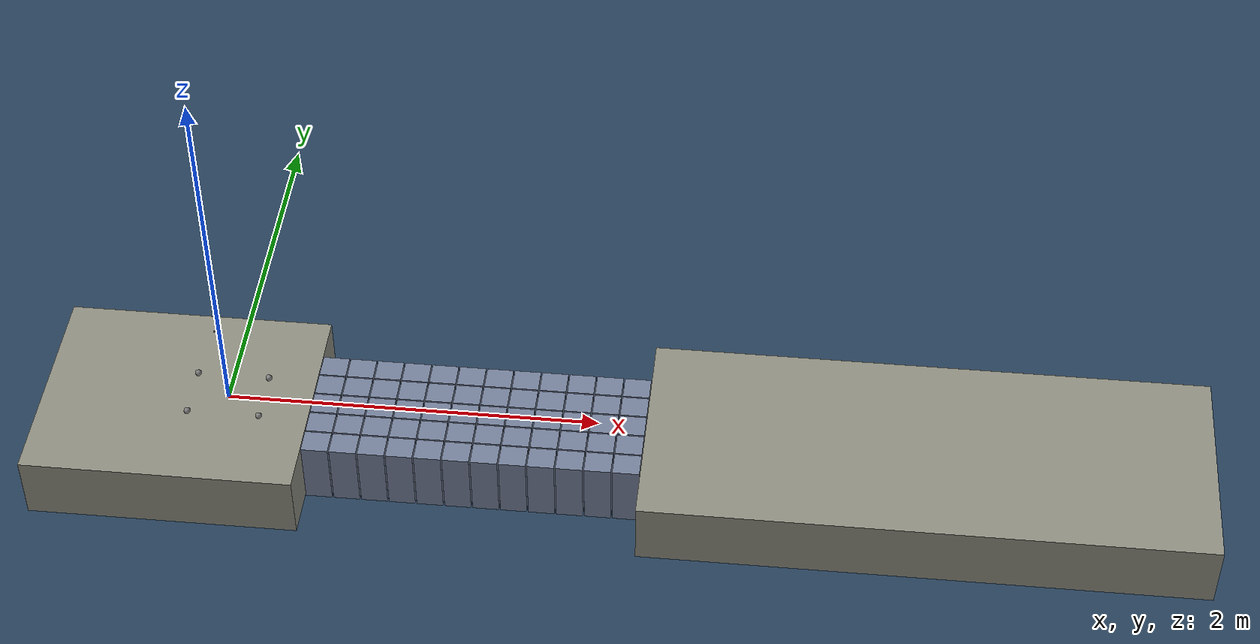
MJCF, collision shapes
<mujoco model="go2 stones">
  <include file="mjx_go2_force.xml"/>
  <statistic center="1 0 0.1" extent="1.5"/>
  <visual>
    <headlight diffuse="0.6 0.6 0.6" ambient="0.3 0.3 0.3" specular="0 0 0"/>
    <global azimuth="-130" elevation="-20"/>
  </visual>
  <asset>
    <texture type="2d" name="groundplane" builtin="checker" mark="edge" rgb1="0.2 0.3 0.4" rgb2="0.1 0.2 0.3"
      markrgb="0.8 0.8 0.8" width="300" height="300"/>
    <material name="groundplane" texture="groundplane" texuniform="true" texrepeat="5 5" reflectance="0.2"/>
  </asset>
  <worldbody>
    <light pos="1 0 1.5" dir="0 0 -1" directional="true"/>
    <geom name="floor" size="0 0 0.05" type="plane" pos="0 0 -0.35" material="groundplane"/>
    <geom name="pad_start" type="box" contype="1" conaffinity="0" rgba="0.55 0.55 0.5 1" size="0.7250 0.6 0.25" pos="-0.2750 0 -0.25"/>
    <geom name="pad_end" type="box" contype="1" conaffinity="0" rgba="0.55 0.55 0.5 1" size="1.5000 0.6 0.25" pos="3.7500 0 -0.25"/>
    <geom name="stone0" type="box" contype="1" conaffinity="0" rgba="0.45 0.5 0.6 1" size="0.0710 0.0660 0.25" pos="0.5250 -0.2800 -0.25"/>
    <geom name="stone1" type="box" contype="1" conaffinity="0" rgba="0.45 0.5 0.6 1" size="0.0710 0.0660 0.25" pos="0.5250 -0.1400 -0.25"/>
    <geom name="stone2" type="box" contype="1" conaffinity="0" rgba="0.45 0.5 0.6 1" size="0.0710 0.0660 0.25" pos="0.5250 0.0000 -0.25"/>
    <geom name="stone3" type="box" contype="1" conaffinity="0" rgba="0.45 0.5 0.6 1" size="0.0710 0.0660 0.25" pos="0.5250 0.1400 -0.25"/>
    <geom name="stone4" type="box" contype="1" conaffinity="0" rgba="0.45 0.5 0.6 1" size="0.0710 0.0660 0.25" pos="0.5250 0.2800 -0.25"/>
    <geom name="stone5" type="box" contype="1" conaffinity="0" rgba="0.45 0.5 0.6 1" size="0.0710 0.0660 0.25" pos="0.6750 -0.2800 -0.25"/>
    <geom name="stone6" type="box" contype="1" conaffinity="0" rgba="0.45 0.5 0.6 1" size="0.0710 0.0660 0.25" pos="0.6750 -0.1400 -0.25"/>
    <geom name="stone7" type="box" contype="1" conaffinity="0" rgba="0.45 0.5 0.6 1" size="0.0710 0.0660 0.25" pos="0.6750 0.0000 -0.25"/>
    <geom name="stone8" type="box" contype="1" conaffinity="0" rgba="0.45 0.5 0.6 1" size="0.0710 0.0660 0.25" pos="0.6750 0.1400 -0.25"/>
    <geom name="stone9" type="box" contype="1" conaffinity="0" rgba="0.45 0.5 0.6 1" size="0.0710 0.0660 0.25" pos="0.6750 0.2800 -0.25"/>
    <geom name="stone10" type="box" contype="1" conaffinity="0" rgba="0.45 0.5 0.6 1" size="0.0710 0.0660 0.25" pos="0.8250 -0.2800 -0.25"/>
    <geom name="stone11" type="box" contype="1" conaffinity="0" rgba="0.45 0.5 0.6 1" size="0.0710 0.0660 0.25" pos="0.8250 -0.1400 -0.25"/>
    <geom name="stone12" type="box" contype="1" conaffinity="0" rgba="0.45 0.5 0.6 1" size="0.0710 0.0660 0.25" pos="0.8250 0.0000 -0.25"/>
    <geom name="stone13" type="box" contype="1" conaffinity="0" rgba="0.45 0.5 0.6 1" size="0.0710 0.0660 0.25" pos="0.8250 0.1400 -0.25"/>
    <geom name="stone14" type="box" contype="1" conaffinity="0" rgba="0.45 0.5 0.6 1" size="0.0710 0.0660 0.25" pos="0.8250 0.2800 -0.25"/>
    <geom name="stone15" type="box" contype="1" conaffinity="0" rgba="0.45 0.5 0.6 1" size="0.0710 0.0660 0.25" pos="0.9750 -0.2800 -0.25"/>
    <geom name="stone16" type="box" contype="1" conaffinity="0" rgba="0.45 0.5 0.6 1" size="0.0710 0.0660 0.25" pos="0.9750 -0.1400 -0.25"/>
    <geom name="stone17" type="box" contype="1" conaffinity="0" rgba="0.45 0.5 0.6 1" size="0.0710 0.0660 0.25" pos="0.9750 0.0000 -0.25"/>
    <geom name="stone18" type="box" contype="1" conaffinity="0" rgba="0.45 0.5 0.6 1" size="0.0710 0.0660 0.25" pos="0.9750 0.1400 -0.25"/>
    <geom name="stone19" type="box" contype="1" conaffinity="0" rgba="0.45 0.5 0.6 1" size="0.0710 0.0660 0.25" pos="0.9750 0.2800 -0.25"/>
    <geom name="stone20" type="box" contype="1" conaffinity="0" rgba="0.45 0.5 0.6 1" size="0.0710 0.0660 0.25" pos="1.1250 -0.2800 -0.25"/>
    <geom name="stone21" type="box" contype="1" conaffinity="0" rgba="0.45 0.5 0.6 1" size="0.0710 0.0660 0.25" pos="1.1250 -0.1400 -0.25"/>
    <geom name="stone22" type="box" contype="1" conaffinity="0" rgba="0.45 0.5 0.6 1" size="0.0710 0.0660 0.25" pos="1.1250 0.0000 -0.25"/>
    <geom name="stone23" type="box" contype="1" conaffinity="0" rgba="0.45 0.5 0.6 1" size="0.0710 0.0660 0.25" pos="1.1250 0.1400 -0.25"/>
    <geom name="stone24" type="box" contype="1" conaffinity="0" rgba="0.45 0.5 0.6 1" size="0.0710 0.0660 0.25" pos="1.1250 0.2800 -0.25"/>
    <geom name="stone25" type="box" contype="1" conaffinity="0" rgba="0.45 0.5 0.6 1" size="0.0710 0.0660 0.25" pos="1.2750 -0.2800 -0.25"/>
    <geom name="stone26" type="box" contype="1" conaffinity="0" rgba="0.45 0.5 0.6 1" size="0.0710 0.0660 0.25" pos="1.2750 -0.1400 -0.25"/>
    <geom name="stone27" type="box" contype="1" conaffinity="0" rgba="0.45 0.5 0.6 1" size="0.0710 0.0660 0.25" pos="1.2750 0.0000 -0.25"/>
    <geom name="stone28" type="box" contype="1" conaffinity="0" rgba="0.45 0.5 0.6 1" size="0.0710 0.0660 0.25" pos="1.2750 0.1400 -0.25"/>
    <geom name="stone29" type="box" contype="1" conaffinity="0" rgba="0.45 0.5 0.6 1" size="0.0710 0.0660 0.25" pos="1.2750 0.2800 -0.25"/>
    <geom name="stone30" type="box" contype="1" conaffinity="0" rgba="0.45 0.5 0.6 1" size="0.0710 0.0660 0.25" pos="1.4250 -0.2800 -0.25"/>
    <geom name="stone31" type="box" contype="1" conaffinity="0" rgba="0.45 0.5 0.6 1" size="0.0710 0.0660 0.25" pos="1.4250 -0.1400 -0.25"/>
    <geom name="stone32" type="box" contype="1" conaffinity="0" rgba="0.45 0.5 0.6 1" size="0.0710 0.0660 0.25" pos="1.4250 0.0000 -0.25"/>
    <geom name="stone33" type="box" contype="1" conaffinity="0" rgba="0.45 0.5 0.6 1" size="0.0710 0.0660 0.25" pos="1.4250 0.1400 -0.25"/>
    <geom name="stone34" type="box" contype="1" conaffinity="0" rgba="0.45 0.5 0.6 1" size="0.0710 0.0660 0.25" pos="1.4250 0.2800 -0.25"/>
    <geom name="stone35" type="box" contype="1" conaffinity="0" rgba="0.45 0.5 0.6 1" size="0.0710 0.0660 0.25" pos="1.5750 -0.2800 -0.25"/>
    <geom name="stone36" type="box" contype="1" conaffinity="0" rgba="0.45 0.5 0.6 1" size="0.0710 0.0660 0.25" pos="1.5750 -0.1400 -0.25"/>
    <geom name="stone37" type="box" contype="1" conaffinity="0" rgba="0.45 0.5 0.6 1" size="0.0710 0.0660 0.25" pos="1.5750 0.0000 -0.25"/>
    <geom name="stone38" type="box" contype="1" conaffinity="0" rgba="0.45 0.5 0.6 1" size="0.0710 0.0660 0.25" pos="1.5750 0.1400 -0.25"/>
    <geom name="stone39" type="box" contype="1" conaffinity="0" rgba="0.45 0.5 0.6 1" size="0.0710 0.0660 0.25" pos="1.5750 0.2800 -0.25"/>
    <geom name="stone40" type="box" contype="1" conaffinity="0" rgba="0.45 0.5 0.6 1" size="0.0710 0.0660 0.25" pos="1.7250 -0.2800 -0.25"/>
    <geom name="stone41" type="box" contype="1" conaffinity="0" rgba="0.45 0.5 0.6 1" size="0.0710 0.0660 0.25" pos="1.7250 -0.1400 -0.25"/>
    <geom name="stone42" type="box" contype="1" conaffinity="0" rgba="0.45 0.5 0.6 1" size="0.0710 0.0660 0.25" pos="1.7250 0.0000 -0.25"/>
    <geom name="stone43" type="box" contype="1" conaffinity="0" rgba="0.45 0.5 0.6 1" size="0.0710 0.0660 0.25" pos="1.7250 0.1400 -0.25"/>
    <geom name="stone44" type="box" contype="1" conaffinity="0" rgba="0.45 0.5 0.6 1" size="0.0710 0.0660 0.25" pos="1.7250 0.2800 -0.25"/>
    <geom name="stone45" type="box" contype="1" conaffinity="0" rgba="0.45 0.5 0.6 1" size="0.0710 0.0660 0.25" pos="1.8750 -0.2800 -0.25"/>
    <geom name="stone46" type="box" contype="1" conaffinity="0" rgba="0.45 0.5 0.6 1" size="0.0710 0.0660 0.25" pos="1.8750 -0.1400 -0.25"/>
    <geom name="stone47" type="box" contype="1" conaffinity="0" rgba="0.45 0.5 0.6 1" size="0.0710 0.0660 0.25" pos="1.8750 0.0000 -0.25"/>
    <geom name="stone48" type="box" contype="1" conaffinity="0" rgba="0.45 0.5 0.6 1" size="0.0710 0.0660 0.25" pos="1.8750 0.1400 -0.25"/>
    <geom name="stone49" type="box" contype="1" conaffinity="0" rgba="0.45 0.5 0.6 1" size="0.0710 0.0660 0.25" pos="1.8750 0.2800 -0.25"/>
    <geom name="stone50" type="box" contype="1" conaffinity="0" rgba="0.45 0.5 0.6 1" size="0.0710 0.0660 0.25" pos="2.0250 -0.2800 -0.25"/>
    <geom name="stone51" type="box" contype="1" conaffinity="0" rgba="0.45 0.5 0.6 1" size="0.0710 0.0660 0.25" pos="2.0250 -0.1400 -0.25"/>
    <geom name="stone52" type="box" contype="1" conaffinity="0" rgba="0.45 0.5 0.6 1" size="0.0710 0.0660 0.25" pos="2.0250 0.0000 -0.25"/>
    <geom name="stone53" type="box" contype="1" conaffinity="0" rgba="0.45 0.5 0.6 1" size="0.0710 0.0660 0.25" pos="2.0250 0.1400 -0.25"/>
    <geom name="stone54" type="box" contype="1" conaffinity="0" rgba="0.45 0.5 0.6 1" size="0.0710 0.0660 0.25" pos="2.0250 0.2800 -0.25"/>
    <geom name="stone55" type="box" contype="1" conaffinity="0" rgba="0.45 0.5 0.6 1" size="0.0710 0.0660 0.25" pos="2.1750 -0.2800 -0.25"/>
    <geom name="stone56" type="box" contype="1" conaffinity="0" rgba="0.45 0.5 0.6 1" size="0.0710 0.0660 0.25" pos="2.1750 -0.1400 -0.25"/>
    <geom name="stone57" type="box" contype="1" conaffinity="0" rgba="0.45 0.5 0.6 1" size="0.0710 0.0660 0.25" pos="2.1750 0.0000 -0.25"/>
    <geom name="stone58" type="box" contype="1" conaffinity="0" rgba="0.45 0.5 0.6 1" size="0.0710 0.0660 0.25" pos="2.1750 0.1400 -0.25"/>
    <geom name="stone59" type="box" contype="1" conaffinity="0" rgba="0.45 0.5 0.6 1" size="0.0710 0.0660 0.25" pos="2.1750 0.2800 -0.25"/>
  </worldbody>
</mujoco>

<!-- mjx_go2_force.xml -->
<mujoco model="go2">
    <compiler angle="radian" meshdir="assets" autolimits="true" />

    <option iterations="2" ls_iterations="5" gravity="0.0 0.0 -9.81">
        <flag eulerdamp="disable" />
    </option>

    <default>
        <default class="go2">
            <geom friction="0.6" margin="0.001" condim="1" />
            <joint axis="0 1 0" damping="0.65" armature="0.01" />
            <motor ctrlrange="-23.7 23.7" />
            <default class="abduction">
                <joint axis="1 0 0" range="-1.0472 1.0472" />
                <motor ctrlrange="-24.0 24.0" />
            </default>
            <default class="hip">
                <default class="front_hip">
                    <joint range="-1.5708 3.4907" />
                    <motor ctrlrange="-24.0 24.0" />
                </default>
                <default class="back_hip">
                    <joint range="-0.5236 4.5379" />
                    <motor ctrlrange="-24.0 24.0" />
                </default>
            </default>
            <default class="knee">
                <joint range="-2.7227 -0.83776" />
                <motor ctrlrange="-45.43 45.43" />
            </default>
            <default class="visual">
                <geom type="mesh" contype="0" conaffinity="0" group="2" />
            </default>
            <default class="go2foot">
                <site group="1" pos="-0.002 0 -0.213" />
                <geom rgba="0.231373 0.380392 0.705882 1" />
            </default>
            <default class="collision">
                <geom group="3" contype="0" conaffinity="1" />
                <default class="foot">
                    <geom type="sphere" size="0.0175" pos="-0.002 0 -0.213" solimp="0.015 1 0.031"
                        friction="0.6 0.02 0.01" condim="3" />
                </default>
            </default>
        </default>
    </default>

    <asset>
        <material name="metal" rgba=".9 .95 .95 1" />
        <material name="black" rgba="0 0 0 1" />
        <material name="white" rgba="1 1 1 1" />
        <material name="gray" rgba="0.671705 0.692426 0.774270 1" />

        <mesh file="base_0.obj" />
        <mesh file="base_1.obj" />
        <mesh file="base_2.obj" />
        <mesh file="base_3.obj" />
        <mesh file="base_4.obj" />
        <mesh file="hip_0.obj" />
        <mesh file="hip_1.obj" />
        <mesh file="thigh_0.obj" />
        <mesh file="thigh_1.obj" />
        <mesh file="thigh_mirror_0.obj" />
        <mesh file="thigh_mirror_1.obj" />
        <mesh file="calf_0.obj" />
        <mesh file="calf_1.obj" />
        <mesh file="calf_mirror_0.obj" />
        <mesh file="calf_mirror_1.obj" />
        <mesh file="foot.obj" />
    </asset>

    <worldbody>
        <body name="base" pos="0 0 0.445" childclass="go2">
            <camera name="track" pos="0.846 -1.465 0.916"
                xyaxes="0.866 0.500 0.000 -0.171 0.296 0.940" mode="trackcom" />
            <inertial pos="0.021112 0 -0.005366" quat="-0.000543471 0.713435 -0.00173769 0.700719"
                mass="7.921"
                diaginertia="0.107027 0.0980771 0.0244531" />
            <freejoint />
            <geom mesh="base_0" material="black" class="visual" />
            <geom mesh="base_1" material="black" class="visual" />
            <geom mesh="base_2" material="black" class="visual" />
            <geom mesh="base_3" material="white" class="visual" />
            <geom mesh="base_4" material="gray" class="visual" />
            <site name="imu" pos="-0.02557 0 0.04232" />
            <body name="FR_hip" pos="0.1934 -0.0465 0">
                <inertial pos="-0.0054 -0.00194 -0.000105"
                    quat="0.498237 0.505462 0.499245 0.497014" mass="0.678"
                    diaginertia="0.00088403 0.000596003 0.000479967" />
                <joint name="FR_hip_joint" class="abduction" />
                <geom mesh="hip_0" material="metal" class="visual" quat="4.63268e-05 1 0 0" />
                <geom mesh="hip_1" material="gray" class="visual" quat="4.63268e-05 1 0 0" />
                <body name="FR_thigh" pos="0 -0.0955 0">
                    <inertial pos="-0.00374 0.0223 -0.0327"
                        quat="0.551623 -0.0200632 0.0847635 0.829533" mass="1.152"
                        diaginertia="0.00594973 0.00584149 0.000878787" />
                    <joint name="FR_thigh_joint" class="front_hip" />
                    <geom mesh="thigh_mirror_0" material="metal" class="visual" />
                    <geom mesh="thigh_mirror_1" material="gray" class="visual" />
                    <body name="FR_calf" pos="0 0 -0.213">
                        <inertial pos="0.00629595 0.000622121 -0.141417"
                            quat="0.703508 -0.00450087 0.00154099 0.710672"
                            mass="0.241352" diaginertia="0.0014901 0.00146356 5.31397e-05" />
                        <joint name="FR_calf_joint" class="knee" />
                        <geom mesh="calf_mirror_0" material="gray" class="visual" />
                        <geom mesh="calf_mirror_1" material="black" class="visual" />
                        <geom pos="0 0 -0.213" mesh="foot" class="visual" material="black" />
                        <geom name="FR" class="foot" />
                        <site name="FR_foot" class="go2foot" />
                    </body>
                </body>
            </body>
            <body name="FL_hip" pos="0.1934 0.0465 0">
                <inertial pos="-0.0054 0.00194 -0.000105" quat="0.497014 0.499245 0.505462 0.498237"
                    mass="0.678"
                    diaginertia="0.00088403 0.000596003 0.000479967" />
                <joint name="FL_hip_joint" class="abduction" />
                <geom mesh="hip_0" material="metal" class="visual" />
                <geom mesh="hip_1" material="gray" class="visual" />
                <body name="FL_thigh" pos="0 0.0955 0">
                    <inertial pos="-0.00374 -0.0223 -0.0327"
                        quat="0.829533 0.0847635 -0.0200632 0.551623" mass="1.152"
                        diaginertia="0.00594973 0.00584149 0.000878787" />
                    <joint name="FL_thigh_joint" class="front_hip" />
                    <geom mesh="thigh_0" material="metal" class="visual" />
                    <geom mesh="thigh_1" material="gray" class="visual" />
                    <body name="FL_calf" pos="0 0 -0.213">
                        <inertial pos="0.00629595 -0.000622121 -0.141417"
                            quat="0.710672 0.00154099 -0.00450087 0.703508"
                            mass="0.241352" diaginertia="0.0014901 0.00146356 5.31397e-05" />
                        <joint name="FL_calf_joint" class="knee" />
                        <geom mesh="calf_0" material="gray" class="visual" />
                        <geom mesh="calf_1" material="black" class="visual" />
                        <geom pos="0 0 -0.213" mesh="foot" class="visual" material="black" />
                        <geom name="FL" class="foot" />
                        <site name="FL_foot" class="go2foot" />
                    </body>
                </body>
            </body>
            <body name="RR_hip" pos="-0.1934 -0.0465 0">
                <inertial pos="0.0054 -0.00194 -0.000105" quat="0.499245 0.497014 0.498237 0.505462"
                    mass="0.678"
                    diaginertia="0.00088403 0.000596003 0.000479967" />
                <joint name="RR_hip_joint" class="abduction" />
                <geom mesh="hip_0" material="metal" class="visual"
                    quat="2.14617e-09 4.63268e-05 4.63268e-05 -1" />
                <geom mesh="hip_1" material="gray" class="visual"
                    quat="2.14617e-09 4.63268e-05 4.63268e-05 -1" />
                <body name="RR_thigh" pos="0 -0.0955 0">
                    <inertial pos="-0.00374 0.0223 -0.0327"
                        quat="0.551623 -0.0200632 0.0847635 0.829533" mass="1.152"
                        diaginertia="0.00594973 0.00584149 0.000878787" />
                    <joint name="RR_thigh_joint" class="back_hip" />
                    <geom mesh="thigh_mirror_0" material="metal" class="visual" />
                    <geom mesh="thigh_mirror_1" material="gray" class="visual" />
                    <body name="RR_calf" pos="0 0 -0.213">
                        <inertial pos="0.00629595 0.000622121 -0.141417"
                            quat="0.703508 -0.00450087 0.00154099 0.710672"
                            mass="0.241352" diaginertia="0.0014901 0.00146356 5.31397e-05" />
                        <joint name="RR_calf_joint" class="knee" />
                        <geom mesh="calf_mirror_0" material="gray" class="visual" />
                        <geom mesh="calf_mirror_1" material="black" class="visual" />
                        <geom pos="0 0 -0.213" mesh="foot" class="visual" material="black" />
                        <geom name="RR" class="foot" />
                        <site name="RR_foot" class="go2foot" />
                    </body>
                </body>
            </body>
            <body name="RL_hip" pos="-0.1934 0.0465 0">
                <inertial pos="0.0054 0.00194 -0.000105" quat="0.505462 0.498237 0.497014 0.499245"
                    mass="0.678"
                    diaginertia="0.00088403 0.000596003 0.000479967" />
                <joint name="RL_hip_joint" class="abduction" />
                <geom mesh="hip_0" material="metal" class="visual" quat="4.63268e-05 0 1 0" />
                <geom mesh="hip_1" material="gray" class="visual" quat="4.63268e-05 0 1 0" />
                <body name="RL_thigh" pos="0 0.0955 0">
                    <inertial pos="-0.00374 -0.0223 -0.0327"
                        quat="0.829533 0.0847635 -0.0200632 0.551623" mass="1.152"
                        diaginertia="0.00594973 0.00584149 0.000878787" />
                    <joint name="RL_thigh_joint" class="back_hip" />
                    <geom mesh="thigh_0" material="metal" class="visual" />
                    <geom mesh="thigh_1" material="gray" class="visual" />
                    <body name="RL_calf" pos="0 0 -0.213">
                        <inertial pos="0.00629595 -0.000622121 -0.141417"
                            quat="0.710672 0.00154099 -0.00450087 0.703508"
                            mass="0.241352" diaginertia="0.0014901 0.00146356 5.31397e-05" />
                        <joint name="RL_calf_joint" class="knee" />
                        <geom mesh="calf_0" material="gray" class="visual" />
                        <geom mesh="calf_1" material="black" class="visual" />
                        <geom pos="0 0 -0.213" mesh="foot" class="visual" material="black" />
                        <geom name="RL" class="foot" />
                        <site name="RL_foot" class="go2foot" />
                    </body>
                </body>
            </body>
        </body>
    </worldbody>

    <actuator>
        <motor class="abduction" name="FR_hip" joint="FR_hip_joint" />
        <motor class="hip" name="FR_thigh" joint="FR_thigh_joint" />
        <motor class="knee" name="FR_calf" joint="FR_calf_joint" />
        <motor class="abduction" name="FL_hip" joint="FL_hip_joint" />
        <motor class="hip" name="FL_thigh" joint="FL_thigh_joint" />
        <motor class="knee" name="FL_calf" joint="FL_calf_joint" />
        <motor class="abduction" name="RR_hip" joint="RR_hip_joint" />
        <motor class="hip" name="RR_thigh" joint="RR_thigh_joint" />
        <motor class="knee" name="RR_calf" joint="RR_calf_joint" />
        <motor class="abduction" name="RL_hip" joint="RL_hip_joint" />
        <motor class="hip" name="RL_thigh" joint="RL_thigh_joint" />
        <motor class="knee" name="RL_calf" joint="RL_calf_joint" />
    </actuator>

    <keyframe>
        <key name="home" qpos="0 0 0.27 1 0 0 0 0 0.9 -1.8 0 0.9 -1.8 0 0.9 -1.8 0 0.9 -1.8" />
    </keyframe>
</mujoco>
